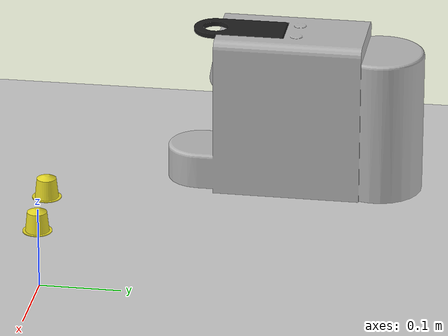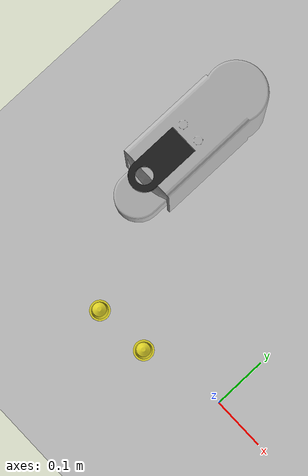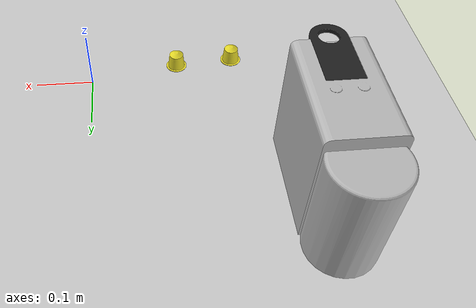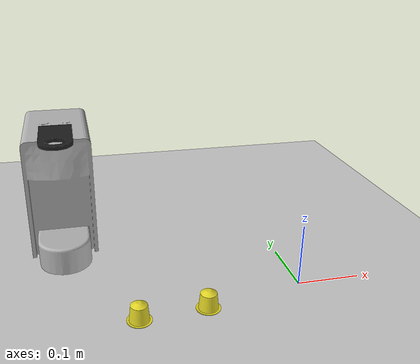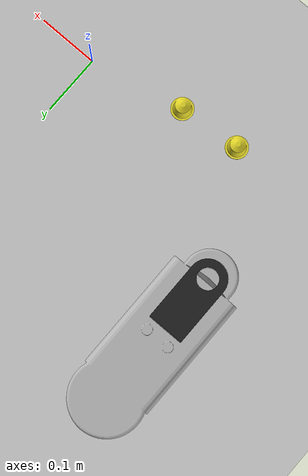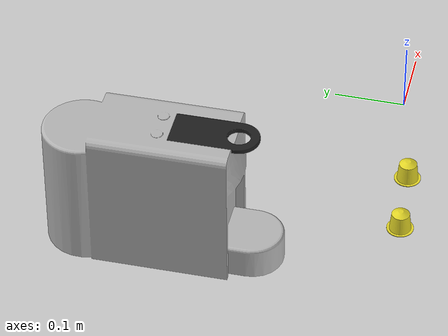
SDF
<sdf version="1.6">
 <world name="default">
  <light name="sun" type="directional">
   <pose>0 0 10 0 -0 0</pose>
   <diffuse>0.8 0.8 0.8 1</diffuse>
   <specular>0.1 0.1 0.1 1</specular>
   <attenuation>
    <range>1000</range>
    <constant>0.9</constant>
    <linear>0.01</linear>
    <quadratic>0.001</quadratic>
   </attenuation>
   <direction>-0.5 0.5 -1</direction>
  </light>
  <model name="ground_plane">
   <static>1</static>
   <link name="link">
    <collision name="collision">
     <geometry><plane><normal>0 0 1</normal><size>100 100</size></plane></geometry>
     <surface><friction><ode><mu>0.1</mu><mu2>0.05</mu2></ode></friction></surface>
    </collision>
    <visual name="visual">
     <cast_shadows>0</cast_shadows>
     <geometry><plane><normal>0 0 1</normal><size>100 100</size></plane></geometry>
     <material>
      <script><uri>file://media/materials/scripts/gazebo.material</uri><name>Gazebo/Grey</name></script>
     </material>
    </visual>
   </link>
  </model>
  <gravity>0 0 -9.81</gravity>
  <magnetic_field>6e-06 2.3e-05 -4.2e-05</magnetic_field>
  <atmosphere type="adiabatic"/>
  <physics name="default_physics" default="0" type="ode">
   <max_step_size>0.001</max_step_size>
   <real_time_factor>1</real_time_factor>
   <real_time_update_rate>1000</real_time_update_rate>
  </physics>
  <scene><ambient>0.4 0.4 0.4 1</ambient><background>0.7 0.7 0.7 1</background><shadows>1</shadows></scene>
  <spherical_coordinates>
   <surface_model>EARTH_WGS84</surface_model>
   <latitude_deg>0</latitude_deg>
   <longitude_deg>0</longitude_deg>
   <elevation>0</elevation>
   <heading_deg>0</heading_deg>
  </spherical_coordinates>
  <model name="Machine">
   <pose>-0.354733 0.264178 0.099687 -0.003122 -0 0.000145</pose>
   <link name="link_0">
    <inertial>
     <mass>3</mass>
     <inertia><ixx>0.036</ixx><ixy>0</ixy><ixz>0</ixz><iyy>0.0135</iyy><iyz>0</iyz><izz>0.0285</izz></inertia>
    </inertial>
    <collision name="collision"><geometry><box><size>0.11 0.2 0.19875</size></box></geometry></collision>
    <visual name="visual">
     <pose>-0.055 0.16 -0.099375 1.57 -0 0</pose>
     <geometry>
      <mesh>
       <uri>/home/gabriel/catkin_ws/src/niryo_one_ros/niryo_one_gazebo/meshes/stl/Machine.STL</uri>
       <scale>1 1 1</scale>
      </mesh>
     </geometry>
    </visual>
   </link>
   <link name="link_1">
    <pose>0 -0.075 0.1025 0 -0 0</pose>
    <inertial>
     <mass>0.1</mass>
     <inertia><ixx>0.012</ixx><ixy>0</ixy><ixz>0</ixz><iyy>0.0045</iyy><iyz>0</iyz><izz>0.0095</izz></inertia>
    </inertial>
    <collision name="collision"><geometry><box><size>0.055 0.12 0.00625</size></box></geometry></collision>
    <visual name="visual">
     <pose>-0.0275 0.161 -0.099 1.57 -0 0</pose>
     <geometry>
      <mesh>
       <uri>/home/gabriel/catkin_ws/src/niryo_one_ros/niryo_one_gazebo/meshes/stl/Lever.STL</uri>
       <scale>1 1 1</scale>
      </mesh>
     </geometry>
     <material>
      <script><uri>file://media/materials/scripts/gazebo.material</uri><name>Gazebo/Black</name></script>
     </material>
    </visual>
   </link>
   <link name="link_2">
    <pose>0 -0.13 -0.0775 0 -0 0</pose>
    <inertial>
     <mass>0.2</mass>
     <inertia><ixx>0.036</ixx><ixy>0</ixy><ixz>0</ixz><iyy>0.0135</iyy><iyz>0</iyz><izz>0.0285</izz></inertia>
    </inertial>
    <collision name="collision"><geometry><box><size>0.09 0.06 0.045</size></box></geometry></collision>
   </link>
   <joint name="Bottom" type="fixed"><parent>link_0</parent><child>link_2</child></joint>
   <joint name="Pivot" type="revolute">
    <parent>link_0</parent>
    <child>link_1</child>
    <pose>0 0.058 0 0 -0 0</pose>
    <axis>
     <xyz>1 0 0</xyz>
     <limit><lower>-1.57</lower><upper>0</upper></limit>
     <use_parent_model_frame>0</use_parent_model_frame>
     <dynamics><spring_reference>0</spring_reference><spring_stiffness>0</spring_stiffness></dynamics>
    </axis>
   </joint>
  </model>
  <model name="Capsule">
   <pose>-0.15469 0.041903 -0.087501 -2e-06 -2e-06 -2e-06</pose>
   <link name="link_3">
    <pose>0 -0.075 0.1025 0 -0 0</pose>
    <inertial>
     <mass>0.1</mass>
     <inertia><ixx>0.012</ixx><ixy>0</ixy><ixz>0</ixz><iyy>0.0045</iyy><iyz>0</iyz><izz>0.0095</izz></inertia>
    </inertial>
    <collision name="collision">
     <geometry><cylinder><radius>0.015</radius><length>0.03</length></cylinder></geometry>
    </collision>
    <visual name="visual">
     <pose>-0.0185 -0.0185 0.015 -1.57 0 0</pose>
     <geometry>
      <mesh>
       <uri>/home/gabriel/catkin_ws/src/niryo_one_ros/niryo_one_gazebo/meshes/stl/Capsule.STL</uri>
       <scale>1 1 1</scale>
      </mesh>
     </geometry>
     <material>
      <script><uri>file://media/materials/scripts/gazebo.material</uri><name>Gazebo/Yellow</name></script>
     </material>
    </visual>
   </link>
  </model>
  <model name="Capsule_0">
   <pose>-0.257366 0.033702 -0.08751 -1e-06 -4e-06 -2e-06</pose>
   <link name="link_3">
    <pose>0 -0.075 0.1025 0 -0 0</pose>
    <inertial>
     <mass>0.1</mass>
     <inertia><ixx>0.012</ixx><ixy>0</ixy><ixz>0</ixz><iyy>0.0045</iyy><iyz>0</iyz><izz>0.0095</izz></inertia>
    </inertial>
    <collision name="collision">
     <geometry><cylinder><radius>0.015</radius><length>0.03</length></cylinder></geometry>
    </collision>
    <visual name="visual">
     <pose>-0.0185 -0.0185 0.015 -1.57 0 0</pose>
     <geometry>
      <mesh>
       <uri>/home/gabriel/catkin_ws/src/niryo_one_ros/niryo_one_gazebo/meshes/stl/Capsule.STL</uri>
       <scale>1 1 1</scale>
      </mesh>
     </geometry>
     <material>
      <script><uri>file://media/materials/scripts/gazebo.material</uri><name>Gazebo/Yellow</name></script>
     </material>
    </visual>
   </link>
  </model>
 </world>
</sdf>
